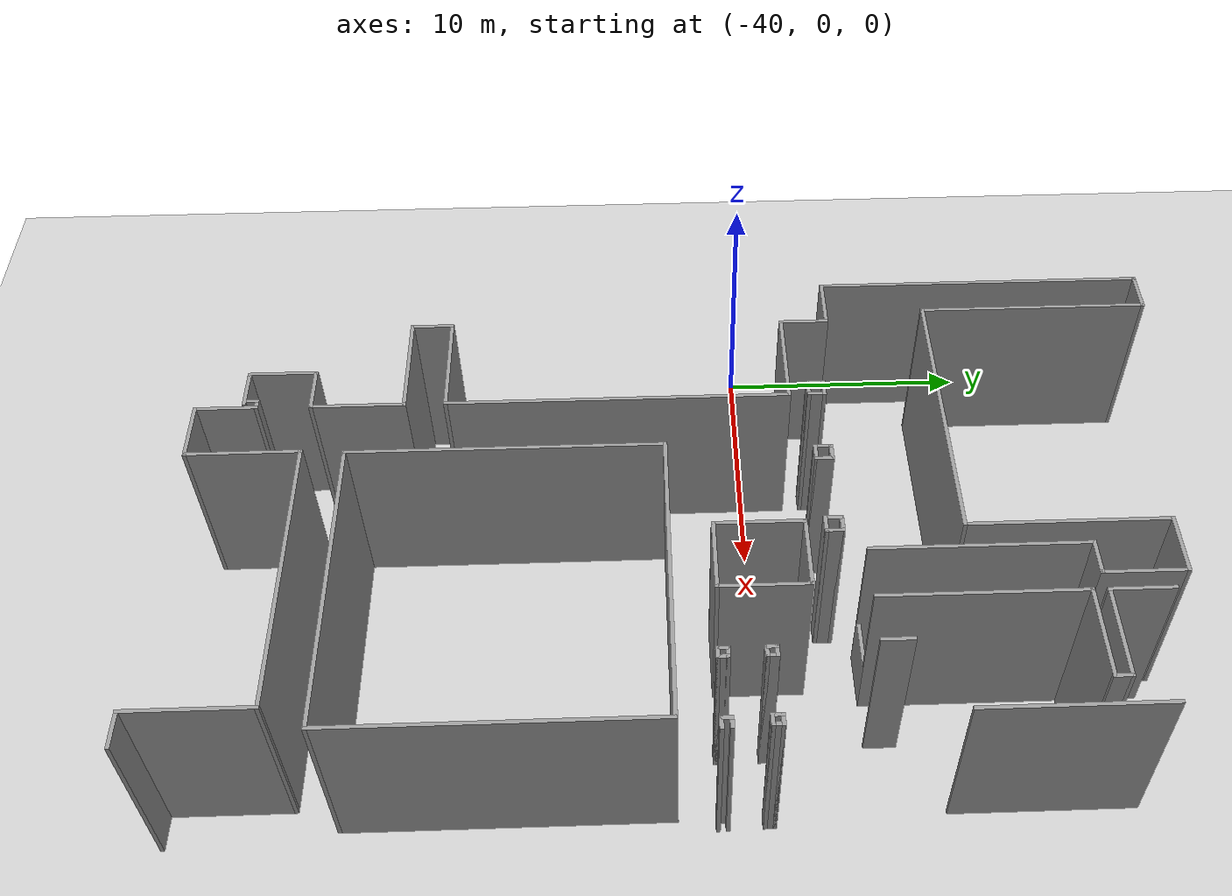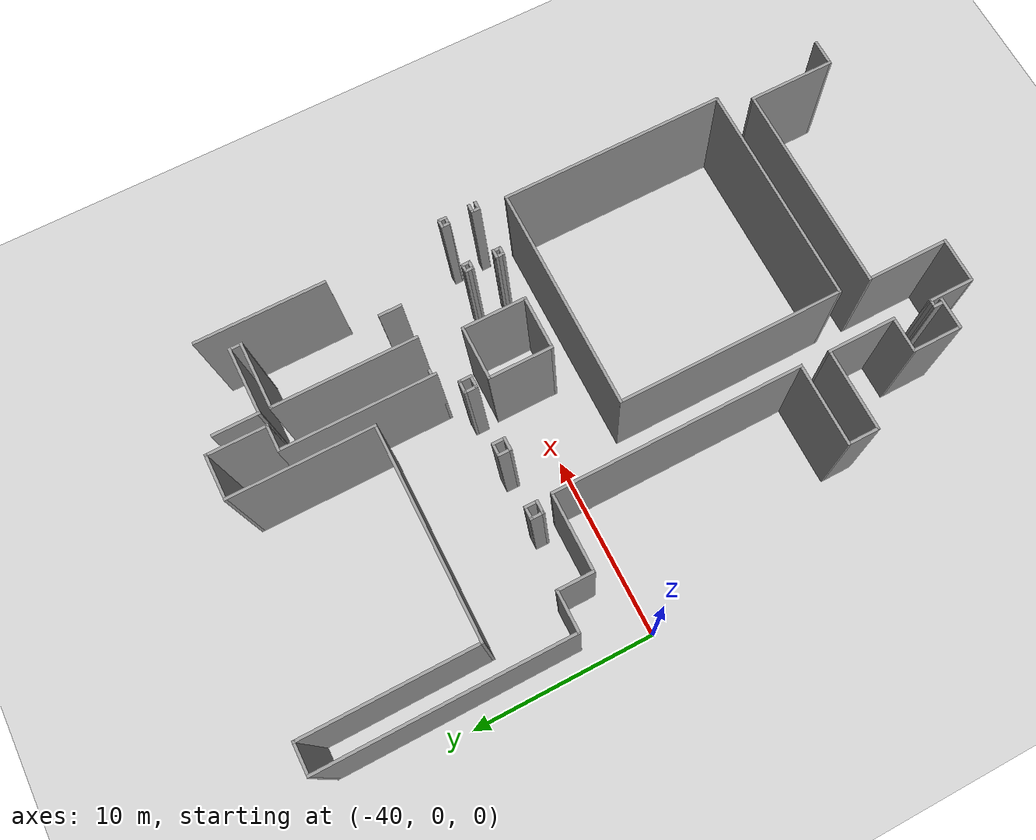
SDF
<sdf version="1.6">
 <world name="default">
  <model name="ground_plane">
   <static>1</static>
   <link name="link">
    <collision name="collision">
     <geometry><plane><normal>0 0 1</normal><size>100 100</size></plane></geometry>
     <surface>
      <contact><collide_bitmask>65535</collide_bitmask></contact>
      <friction><ode><mu>100</mu><mu2>50</mu2></ode></friction>
     </surface>
    </collision>
    <visual name="visual">
     <cast_shadows>0</cast_shadows>
     <geometry><plane><normal>0 0 1</normal><size>100 100</size></plane></geometry>
     <material>
      <script><uri>file://media/materials/scripts/gazebo.material</uri><name>Gazebo/Grey</name></script>
     </material>
    </visual>
   </link>
  </model>
  <model name="mmca">
   <pose>0.137385 4.31033 0 0 -0 0</pose>
   <link name="Wall_100">
    <collision name="Wall_100_Collision">
     <geometry><box><size>2.5 0.15 7</size></box></geometry>
     <pose>0 0 3.5 0 -0 0</pose>
    </collision>
    <visual name="Wall_100_Visual">
     <pose>0 0 3.5 0 -0 0</pose>
     <geometry><box><size>2.5 0.15 7</size></box></geometry>
     <material>
      <script><uri>file://media/materials/scripts/gazebo.material</uri><name>Gazebo/Grey</name></script>
      <ambient>1 1 1 1</ambient>
     </material>
     <meta><layer>0</layer></meta>
    </visual>
    <pose>-24.9515 10.8265 0 0 -0 3.14159</pose>
   </link>
   <link name="Wall_101">
    <collision name="Wall_101_Collision">
     <geometry><box><size>7.75 0.15 7</size></box></geometry>
     <pose>0 0 3.5 0 -0 0</pose>
    </collision>
    <visual name="Wall_101_Visual">
     <pose>0 0 3.5 0 -0 0</pose>
     <geometry><box><size>7.75 0.15 7</size></box></geometry>
     <material>
      <script><uri>file://media/materials/scripts/gazebo.material</uri><name>Gazebo/Grey</name></script>
      <ambient>1 1 1 1</ambient>
     </material>
     <meta><layer>0</layer></meta>
    </visual>
    <pose>-26.1265 7.0265 0 0 -0 -1.5708</pose>
   </link>
   <link name="Wall_102">
    <collision name="Wall_102_Collision">
     <geometry><box><size>11.5 0.15 7</size></box></geometry>
     <pose>0 0 3.5 0 -0 0</pose>
    </collision>
    <visual name="Wall_102_Visual">
     <pose>0 0 3.5 0 -0 0</pose>
     <geometry><box><size>11.5 0.15 7</size></box></geometry>
     <material>
      <script><uri>file://media/materials/scripts/gazebo.material</uri><name>Gazebo/Grey</name></script>
      <ambient>1 1 1 1</ambient>
     </material>
     <meta><layer>0</layer></meta>
    </visual>
    <pose>-31.8015 3.2265 0 0 -0 3.14159</pose>
   </link>
   <link name="Wall_103">
    <collision name="Wall_103_Collision">
     <geometry><box><size>9.25 0.15 7</size></box></geometry>
     <pose>0 0 3.5 0 -0 0</pose>
    </collision>
    <visual name="Wall_103_Visual">
     <pose>0 0 3.5 0 -0 0</pose>
     <geometry><box><size>9.25 0.15 7</size></box></geometry>
     <material>
      <script><uri>file://media/materials/scripts/gazebo.material</uri><name>Gazebo/Grey</name></script>
      <ambient>1 1 1 1</ambient>
     </material>
     <meta><layer>0</layer></meta>
    </visual>
    <pose>-37.4765 7.7765 0 0 -0 1.5708</pose>
   </link>
   <link name="Wall_104">
    <collision name="Wall_104_Collision">
     <geometry><box><size>1.75 0.15 7</size></box></geometry>
     <pose>0 0 3.5 0 -0 0</pose>
    </collision>
    <visual name="Wall_104_Visual">
     <pose>0 0 3.5 0 -0 0</pose>
     <geometry><box><size>1.75 0.15 7</size></box></geometry>
     <material>
      <script><uri>file://media/materials/scripts/gazebo.material</uri><name>Gazebo/Grey</name></script>
      <ambient>1 1 1 1</ambient>
     </material>
     <meta><layer>0</layer></meta>
    </visual>
    <pose>-38.2765 12.3265 0 0 -0 3.14159</pose>
   </link>
   <link name="Wall_105">
    <collision name="Wall_105_Collision">
     <geometry><box><size>13.25 0.15 7</size></box></geometry>
     <pose>0 0 3.5 0 -0 0</pose>
    </collision>
    <visual name="Wall_105_Visual">
     <pose>0 0 3.5 0 -0 0</pose>
     <geometry><box><size>13.25 0.15 7</size></box></geometry>
     <material>
      <script><uri>file://media/materials/scripts/gazebo.material</uri><name>Gazebo/Grey</name></script>
      <ambient>1 1 1 1</ambient>
     </material>
     <meta><layer>0</layer></meta>
    </visual>
    <pose>-39.0765 5.7765 0 0 -0 -1.5708</pose>
   </link>
   <link name="Wall_106">
    <collision name="Wall_106_Collision">
     <geometry><box><size>2.25 0.15 7</size></box></geometry>
     <pose>0 0 3.5 0 -0 0</pose>
    </collision>
    <visual name="Wall_106_Visual">
     <pose>0 0 3.5 0 -0 0</pose>
     <geometry><box><size>2.25 0.15 7</size></box></geometry>
     <material>
      <script><uri>file://media/materials/scripts/gazebo.material</uri><name>Gazebo/Grey</name></script>
      <ambient>1 1 1 1</ambient>
     </material>
     <meta><layer>0</layer></meta>
    </visual>
    <pose>-38.0265 -0.773501 0 0 -0 0</pose>
   </link>
   <link name="Wall_107">
    <collision name="Wall_107_Collision">
     <geometry><box><size>2 0.15 7</size></box></geometry>
     <pose>0 0 3.5 0 -0 0</pose>
    </collision>
    <visual name="Wall_107_Visual">
     <pose>0 0 3.5 0 -0 0</pose>
     <geometry><box><size>2 0.15 7</size></box></geometry>
     <material>
      <script><uri>file://media/materials/scripts/gazebo.material</uri><name>Gazebo/Grey</name></script>
      <ambient>1 1 1 1</ambient>
     </material>
     <meta><layer>0</layer></meta>
    </visual>
    <pose>-36.9765 -1.6985 0 0 -0 -1.5708</pose>
   </link>
   <link name="Wall_108">
    <collision name="Wall_108_Collision">
     <geometry><box><size>4.25 0.15 7</size></box></geometry>
     <pose>0 0 3.5 0 -0 0</pose>
    </collision>
    <visual name="Wall_108_Visual">
     <pose>0 0 3.5 0 -0 0</pose>
     <geometry><box><size>4.25 0.15 7</size></box></geometry>
     <material>
      <script><uri>file://media/materials/scripts/gazebo.material</uri><name>Gazebo/Grey</name></script>
      <ambient>1 1 1 1</ambient>
     </material>
     <meta><layer>0</layer></meta>
    </visual>
    <pose>-34.9265 -2.6235 0 0 -0 0</pose>
   </link>
   <link name="Wall_109">
    <collision name="Wall_109_Collision">
     <geometry><box><size>13.5 0.15 7</size></box></geometry>
     <pose>0 0 3.5 0 -0 0</pose>
    </collision>
    <visual name="Wall_109_Visual">
     <pose>0 0 3.5 0 -0 0</pose>
     <geometry><box><size>13.5 0.15 7</size></box></geometry>
     <material>
      <script><uri>file://media/materials/scripts/gazebo.material</uri><name>Gazebo/Grey</name></script>
      <ambient>1 1 1 1</ambient>
     </material>
     <meta><layer>0</layer></meta>
    </visual>
    <pose>-32.8765 -9.2985 0 0 -0 -1.5708</pose>
   </link>
   <link name="Wall_110">
    <collision name="Wall_110_Collision">
     <geometry><box><size>4.5 0.15 7</size></box></geometry>
     <pose>0 0 3.5 0 -0 0</pose>
    </collision>
    <visual name="Wall_110_Visual">
     <pose>0 0 3.5 0 -0 0</pose>
     <geometry><box><size>4.5 0.15 7</size></box></geometry>
     <material>
      <script><uri>file://media/materials/scripts/gazebo.material</uri><name>Gazebo/Grey</name></script>
      <ambient>1 1 1 1</ambient>
     </material>
     <meta><layer>0</layer></meta>
    </visual>
    <pose>-35.0515 -15.9735 0 0 -0 3.14159</pose>
   </link>
   <link name="Wall_111">
    <collision name="Wall_111_Collision">
     <geometry><box><size>1.75 0.15 7</size></box></geometry>
     <pose>0 0 3.5 0 -0 0</pose>
    </collision>
    <visual name="Wall_111_Visual">
     <pose>0 0 3.5 0 -0 0</pose>
     <geometry><box><size>1.75 0.15 7</size></box></geometry>
     <material>
      <script><uri>file://media/materials/scripts/gazebo.material</uri><name>Gazebo/Grey</name></script>
      <ambient>1 1 1 1</ambient>
     </material>
     <meta><layer>0</layer></meta>
    </visual>
    <pose>-37.2265 -16.7735 0 0 -0 -1.5708</pose>
   </link>
   <link name="Wall_112">
    <collision name="Wall_112_Collision">
     <geometry><box><size>4.5 0.15 7</size></box></geometry>
     <pose>0 0 3.5 0 -0 0</pose>
    </collision>
    <visual name="Wall_112_Visual">
     <pose>0 0 3.5 0 -0 0</pose>
     <geometry><box><size>4.5 0.15 7</size></box></geometry>
     <material>
      <script><uri>file://media/materials/scripts/gazebo.material</uri><name>Gazebo/Grey</name></script>
      <ambient>1 1 1 1</ambient>
     </material>
     <meta><layer>0</layer></meta>
    </visual>
    <pose>-35.0515 -17.5735 0 0 -0 0</pose>
   </link>
   <link name="Wall_113">
    <collision name="Wall_113_Collision">
     <geometry><box><size>3.75 0.15 7</size></box></geometry>
     <pose>0 0 3.5 0 -0 0</pose>
    </collision>
    <visual name="Wall_113_Visual">
     <pose>0 0 3.5 0 -0 0</pose>
     <geometry><box><size>3.75 0.15 7</size></box></geometry>
     <material>
      <script><uri>file://media/materials/scripts/gazebo.material</uri><name>Gazebo/Grey</name></script>
      <ambient>1 1 1 1</ambient>
     </material>
     <meta><layer>0</layer></meta>
    </visual>
    <pose>-32.8765 -19.3735 0 0 -0 -1.5708</pose>
   </link>
   <link name="Wall_114">
    <collision name="Wall_114_Collision">
     <geometry><box><size>2 0.15 7</size></box></geometry>
     <pose>0 0 3.5 0 -0 0</pose>
    </collision>
    <visual name="Wall_114_Visual">
     <pose>0 0 3.5 0 -0 0</pose>
     <geometry><box><size>2 0.15 7</size></box></geometry>
     <material>
      <script><uri>file://media/materials/scripts/gazebo.material</uri><name>Gazebo/Grey</name></script>
      <ambient>1 1 1 1</ambient>
     </material>
     <meta><layer>0</layer></meta>
    </visual>
    <pose>-33.8015 -21.1735 0 0 -0 3.14159</pose>
   </link>
   <link name="Wall_116">
    <collision name="Wall_116_Collision">
     <geometry><box><size>2.75 0.15 7</size></box></geometry>
     <pose>0 0 3.5 0 -0 0</pose>
    </collision>
    <visual name="Wall_116_Visual">
     <pose>0 0 3.5 0 -0 0</pose>
     <geometry><box><size>2.75 0.15 7</size></box></geometry>
     <material>
      <script><uri>file://media/materials/scripts/gazebo.material</uri><name>Gazebo/Grey</name></script>
      <ambient>1 1 1 1</ambient>
     </material>
     <meta><layer>0</layer></meta>
    </visual>
    <pose>-34.7265 -22.4735 0 0 -0 -1.5708</pose>
   </link>
   <link name="Wall_117">
    <collision name="Wall_117_Collision">
     <geometry><box><size>1.75 0.15 7</size></box></geometry>
     <pose>0 0 3.5 0 -0 0</pose>
    </collision>
    <visual name="Wall_117_Visual">
     <pose>0 0 3.5 0 -0 0</pose>
     <geometry><box><size>1.75 0.15 7</size></box></geometry>
     <material>
      <script><uri>file://media/materials/scripts/gazebo.material</uri><name>Gazebo/Grey</name></script>
      <ambient>1 1 1 1</ambient>
     </material>
     <meta><layer>0</layer></meta>
    </visual>
    <pose>-33.9265 -23.7735 0 0 -0 0</pose>
   </link>
   <link name="Wall_20">
    <collision name="Wall_20_Collision">
     <geometry><box><size>3 0.15 7</size></box></geometry>
     <pose>0 0 3.5 0 -0 0</pose>
    </collision>
    <visual name="Wall_20_Visual">
     <pose>0 0 3.5 0 -0 0</pose>
     <geometry><box><size>3 0.15 7</size></box></geometry>
     <material>
      <script><uri>file://media/materials/scripts/gazebo.material</uri><name>Gazebo/Grey</name></script>
      <ambient>1 1 1 1</ambient>
     </material>
     <meta><layer>0</layer></meta>
    </visual>
    <pose>-25.0695 -2.5415 0 0 -0 0</pose>
   </link>
   <link name="Wall_21">
    <collision name="Wall_21_Collision">
     <geometry><box><size>3.5 0.15 7</size></box></geometry>
     <pose>0 0 3.5 0 -0 0</pose>
    </collision>
    <visual name="Wall_21_Visual">
     <pose>0 0 3.5 0 -0 0</pose>
     <geometry><box><size>3.5 0.15 7</size></box></geometry>
     <material>
      <script><uri>file://media/materials/scripts/gazebo.material</uri><name>Gazebo/Grey</name></script>
      <ambient>1 1 1 1</ambient>
     </material>
     <meta><layer>0</layer></meta>
    </visual>
    <pose>-23.6445 -4.2165 0 0 -0 -1.5708</pose>
   </link>
   <link name="Wall_22">
    <collision name="Wall_22_Collision">
     <geometry><box><size>3 0.15 7</size></box></geometry>
     <pose>0 0 3.5 0 -0 0</pose>
    </collision>
    <visual name="Wall_22_Visual">
     <pose>0 0 3.5 0 -0 0</pose>
     <geometry><box><size>3 0.15 7</size></box></geometry>
     <material>
      <script><uri>file://media/materials/scripts/gazebo.material</uri><name>Gazebo/Grey</name></script>
      <ambient>1 1 1 1</ambient>
     </material>
     <meta><layer>0</layer></meta>
    </visual>
    <pose>-25.0695 -5.8915 0 0 -0 3.14159</pose>
   </link>
   <link name="Wall_23">
    <collision name="Wall_23_Collision">
     <geometry><box><size>3.5 0.15 7</size></box></geometry>
     <pose>0 0 3.5 0 -0 0</pose>
    </collision>
    <visual name="Wall_23_Visual">
     <pose>0 0 3.5 0 -0 0</pose>
     <geometry><box><size>3.5 0.15 7</size></box></geometry>
     <material>
      <script><uri>file://media/materials/scripts/gazebo.material</uri><name>Gazebo/Grey</name></script>
      <ambient>1 1 1 1</ambient>
     </material>
     <meta><layer>0</layer></meta>
    </visual>
    <pose>-26.4945 -4.2165 0 0 -0 1.5708</pose>
   </link>
   <link name="Wall_254">
    <collision name="Wall_254_Collision">
     <geometry><box><size>1.25 0.15 7</size></box></geometry>
     <pose>0 0 3.5 0 -0 0</pose>
    </collision>
    <visual name="Wall_254_Visual">
     <pose>0 0 3.5 0 -0 0</pose>
     <geometry><box><size>1.25 0.15 7</size></box></geometry>
     <material>
      <script><uri>file://media/materials/scripts/gazebo.material</uri><name>Gazebo/Grey</name></script>
      <ambient>1 1 1 1</ambient>
     </material>
     <meta><layer>0</layer></meta>
    </visual>
    <pose>-21.1765 0.176499 0 0 -0 1.5708</pose>
   </link>
   <link name="Wall_258">
    <collision name="Wall_258_Collision">
     <geometry><box><size>2.25 0.15 2.5</size></box></geometry>
     <pose>0 0 1.25 0 -0 0</pose>
    </collision>
    <visual name="Wall_258_Visual">
     <pose>0 0 1.25 0 -0 0</pose>
     <geometry><box><size>2.25 0.15 2.5</size></box></geometry>
     <material>
      <script><uri>file://media/materials/scripts/gazebo.material</uri><name>Gazebo/Grey</name></script>
      <ambient>1 1 1 1</ambient>
     </material>
     <meta><layer>0</layer></meta>
    </visual>
    <pose>-24.0765 -0.373501 0 0 -0 0</pose>
   </link>
   <link name="Wall_259">
    <collision name="Wall_259_Collision">
     <geometry><box><size>7.75 0.15 7</size></box></geometry>
     <pose>0 0 3.5 0 -0 0</pose>
    </collision>
    <visual name="Wall_259_Visual">
     <pose>0 0 3.5 0 -0 0</pose>
     <geometry><box><size>7.75 0.15 7</size></box></geometry>
     <material>
      <script><uri>file://media/materials/scripts/gazebo.material</uri><name>Gazebo/Grey</name></script>
      <ambient>1 1 1 1</ambient>
     </material>
     <meta><layer>0</layer></meta>
    </visual>
    <pose>-23.0265 3.4265 0 0 -0 1.5708</pose>
   </link>
   <link name="Wall_260">
    <collision name="Wall_260_Collision">
     <geometry><box><size>3.75 0.15 7</size></box></geometry>
     <pose>0 0 3.5 0 -0 0</pose>
    </collision>
    <visual name="Wall_260_Visual">
     <pose>0 0 3.5 0 -0 0</pose>
     <geometry><box><size>3.75 0.15 7</size></box></geometry>
     <material>
      <script><uri>file://media/materials/scripts/gazebo.material</uri><name>Gazebo/Grey</name></script>
      <ambient>1 1 1 1</ambient>
     </material>
     <meta><layer>0</layer></meta>
    </visual>
    <pose>-21.2265 7.2265 0 0 -0 0</pose>
   </link>
   <link name="Wall_263">
    <collision name="Wall_263_Collision">
     <geometry><box><size>0.75 0.15 7</size></box></geometry>
     <pose>0 0 3.5 0 -0 0</pose>
    </collision>
    <visual name="Wall_263_Visual">
     <pose>0 0 3.5 0 -0 0</pose>
     <geometry><box><size>0.75 0.15 7</size></box></geometry>
     <material>
      <script><uri>file://media/materials/scripts/gazebo.material</uri><name>Gazebo/Grey</name></script>
      <ambient>1 1 1 1</ambient>
     </material>
     <meta><layer>0</layer></meta>
    </visual>
    <pose>-19.4265 7.5265 0 0 -0 1.5708</pose>
   </link>
   <link name="Wall_264">
    <collision name="Wall_264_Collision">
     <geometry><box><size>3.75 0.15 7</size></box></geometry>
     <pose>0 0 3.5 0 -0 0</pose>
    </collision>
    <visual name="Wall_264_Visual">
     <pose>0 0 3.5 0 -0 0</pose>
     <geometry><box><size>3.75 0.15 7</size></box></geometry>
     <material>
      <script><uri>file://media/materials/scripts/gazebo.material</uri><name>Gazebo/Grey</name></script>
      <ambient>1 1 1 1</ambient>
     </material>
     <meta><layer>0</layer></meta>
    </visual>
    <pose>-21.2265 7.8265 0 0 -0 3.14159</pose>
   </link>
   <link name="Wall_266">
    <collision name="Wall_266_Collision">
     <geometry><box><size>2.5 0.15 7</size></box></geometry>
     <pose>0 0 3.5 0 -0 0</pose>
    </collision>
    <visual name="Wall_266_Visual">
     <pose>0 0 3.5 0 -0 0</pose>
     <geometry><box><size>2.5 0.15 7</size></box></geometry>
     <material>
      <script><uri>file://media/materials/scripts/gazebo.material</uri><name>Gazebo/Grey</name></script>
      <ambient>1 1 1 1</ambient>
     </material>
     <meta><layer>0</layer></meta>
    </visual>
    <pose>-23.0265 9.0015 0 0 -0 1.5708</pose>
   </link>
   <link name="Wall_270">
    <collision name="Wall_270_Collision">
     <geometry><box><size>7 0.15 7</size></box></geometry>
     <pose>0 0 3.5 0 -0 0</pose>
    </collision>
    <visual name="Wall_270_Visual">
     <pose>0 0 3.5 0 -0 0</pose>
     <geometry><box><size>7 0.15 7</size></box></geometry>
     <material>
      <script><uri>file://media/materials/scripts/gazebo.material</uri><name>Gazebo/Grey</name></script>
      <ambient>1 1 1 1</ambient>
     </material>
     <meta><layer>0</layer></meta>
    </visual>
    <pose>-18.3315 5.7965 0 0 -0 -1.5708</pose>
   </link>
   <link name="Wall_324">
    <collision name="Wall_324_Collision">
     <geometry><box><size>0.5 0.15 7</size></box></geometry>
     <pose>0 0 3.5 0 -0 0</pose>
    </collision>
    <visual name="Wall_324_Visual">
     <pose>0 0 3.5 0 -0 0</pose>
     <geometry><box><size>0.5 0.15 7</size></box></geometry>
     <material>
      <script><uri>file://media/materials/scripts/gazebo.material</uri><name>Gazebo/Grey</name></script>
      <ambient>1 1 1 1</ambient>
     </material>
     <meta><layer>0</layer></meta>
    </visual>
    <pose>-20.8435 -3.9825 0 0 -0 0</pose>
   </link>
   <link name="Wall_325">
    <collision name="Wall_325_Collision">
     <geometry><box><size>0.5 0.15 7</size></box></geometry>
     <pose>0 0 3.5 0 -0 0</pose>
    </collision>
    <visual name="Wall_325_Visual">
     <pose>0 0 3.5 0 -0 0</pose>
     <geometry><box><size>0.5 0.15 7</size></box></geometry>
     <material>
      <script><uri>file://media/materials/scripts/gazebo.material</uri><name>Gazebo/Grey</name></script>
      <ambient>1 1 1 1</ambient>
     </material>
     <meta><layer>0</layer></meta>
    </visual>
    <pose>-20.6685 -4.1575 0 0 -0 -1.5708</pose>
   </link>
   <link name="Wall_326">
    <collision name="Wall_326_Collision">
     <geometry><box><size>0.5 0.15 7</size></box></geometry>
     <pose>0 0 3.5 0 -0 0</pose>
    </collision>
    <visual name="Wall_326_Visual">
     <pose>0 0 3.5 0 -0 0</pose>
     <geometry><box><size>0.5 0.15 7</size></box></geometry>
     <material>
      <script><uri>file://media/materials/scripts/gazebo.material</uri><name>Gazebo/Grey</name></script>
      <ambient>1 1 1 1</ambient>
     </material>
     <meta><layer>0</layer></meta>
    </visual>
    <pose>-20.8435 -4.3325 0 0 -0 3.14159</pose>
   </link>
   <link name="Wall_327">
    <collision name="Wall_327_Collision">
     <geometry><box><size>0.5 0.15 7</size></box></geometry>
     <pose>0 0 3.5 0 -0 0</pose>
    </collision>
    <visual name="Wall_327_Visual">
     <pose>0 0 3.5 0 -0 0</pose>
     <geometry><box><size>0.5 0.15 7</size></box></geometry>
     <material>
      <script><uri>file://media/materials/scripts/gazebo.material</uri><name>Gazebo/Grey</name></script>
      <ambient>1 1 1 1</ambient>
     </material>
     <meta><layer>0</layer></meta>
    </visual>
    <pose>-21.0185 -4.1575 0 0 -0 1.5708</pose>
   </link>
   <link name="Wall_329">
    <collision name="Wall_329_Collision">
     <geometry><box><size>0.5 0.15 7</size></box></geometry>
     <pose>0 0 3.5 0 -0 0</pose>
    </collision>
    <visual name="Wall_329_Visual">
     <pose>0 0 3.5 0 -0 0</pose>
     <geometry><box><size>0.5 0.15 7</size></box></geometry>
     <material>
      <script><uri>file://media/materials/scripts/gazebo.material</uri><name>Gazebo/Grey</name></script>
      <ambient>1 1 1 1</ambient>
     </material>
     <meta><layer>0</layer></meta>
    </visual>
    <pose>-20.8535 -5.6555 0 0 -0 0</pose>
   </link>
   <link name="Wall_330">
    <collision name="Wall_330_Collision">
     <geometry><box><size>0.5 0.15 7</size></box></geometry>
     <pose>0 0 3.5 0 -0 0</pose>
    </collision>
    <visual name="Wall_330_Visual">
     <pose>0 0 3.5 0 -0 0</pose>
     <geometry><box><size>0.5 0.15 7</size></box></geometry>
     <material>
      <script><uri>file://media/materials/scripts/gazebo.material</uri><name>Gazebo/Grey</name></script>
      <ambient>1 1 1 1</ambient>
     </material>
     <meta><layer>0</layer></meta>
    </visual>
    <pose>-20.6785 -5.8305 0 0 -0 -1.5708</pose>
   </link>
   <link name="Wall_331">
    <collision name="Wall_331_Collision">
     <geometry><box><size>0.5 0.15 7</size></box></geometry>
     <pose>0 0 3.5 0 -0 0</pose>
    </collision>
    <visual name="Wall_331_Visual">
     <pose>0 0 3.5 0 -0 0</pose>
     <geometry><box><size>0.5 0.15 7</size></box></geometry>
     <material>
      <script><uri>file://media/materials/scripts/gazebo.material</uri><name>Gazebo/Grey</name></script>
      <ambient>1 1 1 1</ambient>
     </material>
     <meta><layer>0</layer></meta>
    </visual>
    <pose>-20.8535 -6.0055 0 0 -0 3.14159</pose>
   </link>
   <link name="Wall_332">
    <collision name="Wall_332_Collision">
     <geometry><box><size>0.5 0.15 7</size></box></geometry>
     <pose>0 0 3.5 0 -0 0</pose>
    </collision>
    <visual name="Wall_332_Visual">
     <pose>0 0 3.5 0 -0 0</pose>
     <geometry><box><size>0.5 0.15 7</size></box></geometry>
     <material>
      <script><uri>file://media/materials/scripts/gazebo.material</uri><name>Gazebo/Grey</name></script>
      <ambient>1 1 1 1</ambient>
     </material>
     <meta><layer>0</layer></meta>
    </visual>
    <pose>-21.0285 -5.8305 0 0 -0 1.5708</pose>
   </link>
   <link name="Wall_334">
    <collision name="Wall_334_Collision">
     <geometry><box><size>0.5 0.15 7</size></box></geometry>
     <pose>0 0 3.5 0 -0 0</pose>
    </collision>
    <visual name="Wall_334_Visual">
     <pose>0 0 3.5 0 -0 0</pose>
     <geometry><box><size>0.5 0.15 7</size></box></geometry>
     <material>
      <script><uri>file://media/materials/scripts/gazebo.material</uri><name>Gazebo/Grey</name></script>
      <ambient>1 1 1 1</ambient>
     </material>
     <meta><layer>0</layer></meta>
    </visual>
    <pose>-18.0815 -5.6745 0 0 -0 0</pose>
   </link>
   <link name="Wall_336">
    <collision name="Wall_336_Collision">
     <geometry><box><size>0.5 0.15 7</size></box></geometry>
     <pose>0 0 3.5 0 -0 0</pose>
    </collision>
    <visual name="Wall_336_Visual">
     <pose>0 0 3.5 0 -0 0</pose>
     <geometry><box><size>0.5 0.15 7</size></box></geometry>
     <material>
      <script><uri>file://media/materials/scripts/gazebo.material</uri><name>Gazebo/Grey</name></script>
      <ambient>1 1 1 1</ambient>
     </material>
     <meta><layer>0</layer></meta>
    </visual>
    <pose>-18.0815 -6.0245 0 0 -0 3.14159</pose>
   </link>
   <link name="Wall_337">
    <collision name="Wall_337_Collision">
     <geometry><box><size>0.5 0.15 7</size></box></geometry>
     <pose>0 0 3.5 0 -0 0</pose>
    </collision>
    <visual name="Wall_337_Visual">
     <pose>0 0 3.5 0 -0 0</pose>
     <geometry><box><size>0.5 0.15 7</size></box></geometry>
     <material>
      <script><uri>file://media/materials/scripts/gazebo.material</uri><name>Gazebo/Grey</name></script>
      <ambient>1 1 1 1</ambient>
     </material>
     <meta><layer>0</layer></meta>
    </visual>
    <pose>-18.2565 -5.8495 0 0 -0 1.5708</pose>
   </link>
   <link name="Wall_364">
    <collision name="Wall_364_Collision">
     <geometry><box><size>12.25 0.15 7</size></box></geometry>
     <pose>0 0 3.5 0 -0 0</pose>
    </collision>
    <visual name="Wall_364_Visual">
     <pose>0 0 3.5 0 -0 0</pose>
     <geometry><box><size>12.25 0.15 7</size></box></geometry>
     <material>
      <script><uri>file://media/materials/scripts/gazebo.material</uri><name>Gazebo/Grey</name></script>
      <ambient>1 1 1 1</ambient>
     </material>
     <meta><layer>0</layer></meta>
    </visual>
    <pose>-24.3975 -7.5215 0 0 -0 0</pose>
   </link>
   <link name="Wall_365">
    <collision name="Wall_365_Collision">
     <geometry><box><size>12.25 0.15 7</size></box></geometry>
     <pose>0 0 3.5 0 -0 0</pose>
    </collision>
    <visual name="Wall_365_Visual">
     <pose>0 0 3.5 0 -0 0</pose>
     <geometry><box><size>12.25 0.15 7</size></box></geometry>
     <material>
      <script><uri>file://media/materials/scripts/gazebo.material</uri><name>Gazebo/Grey</name></script>
      <ambient>1 1 1 1</ambient>
     </material>
     <meta><layer>0</layer></meta>
    </visual>
    <pose>-18.3475 -13.5715 0 0 -0 -1.5708</pose>
   </link>
   <link name="Wall_366">
    <collision name="Wall_366_Collision">
     <geometry><box><size>12.25 0.15 7</size></box></geometry>
     <pose>0 0 3.5 0 -0 0</pose>
    </collision>
    <visual name="Wall_366_Visual">
     <pose>0 0 3.5 0 -0 0</pose>
     <geometry><box><size>12.25 0.15 7</size></box></geometry>
     <material>
      <script><uri>file://media/materials/scripts/gazebo.material</uri><name>Gazebo/Grey</name></script>
      <ambient>1 1 1 1</ambient>
     </material>
     <meta><layer>0</layer></meta>
    </visual>
    <pose>-24.3975 -19.6215 0 0 -0 3.14159</pose>
   </link>
   <link name="Wall_367">
    <collision name="Wall_367_Collision">
     <geometry><box><size>12.25 0.15 7</size></box></geometry>
     <pose>0 0 3.5 0 -0 0</pose>
    </collision>
    <visual name="Wall_367_Visual">
     <pose>0 0 3.5 0 -0 0</pose>
     <geometry><box><size>12.25 0.15 7</size></box></geometry>
     <material>
      <script><uri>file://media/materials/scripts/gazebo.material</uri><name>Gazebo/Grey</name></script>
      <ambient>1 1 1 1</ambient>
     </material>
     <meta><layer>0</layer></meta>
    </visual>
    <pose>-30.4475 -13.5715 0 0 -0 1.5708</pose>
   </link>
   <link name="Wall_369">
    <collision name="Wall_369_Collision">
     <geometry><box><size>0.5 0.15 7</size></box></geometry>
     <pose>0 0 3.5 0 -0 0</pose>
    </collision>
    <visual name="Wall_369_Visual">
     <pose>0 0 3.5 0 -0 0</pose>
     <geometry><box><size>0.5 0.15 7</size></box></geometry>
     <material>
      <script><uri>file://media/materials/scripts/gazebo.material</uri><name>Gazebo/Grey</name></script>
      <ambient>1 1 1 1</ambient>
     </material>
     <meta><layer>0</layer></meta>
    </visual>
    <pose>-18.1345 -3.9895 0 0 -0 0</pose>
   </link>
   <link name="Wall_370">
    <collision name="Wall_370_Collision">
     <geometry><box><size>0.5 0.15 7</size></box></geometry>
     <pose>0 0 3.5 0 -0 0</pose>
    </collision>
    <visual name="Wall_370_Visual">
     <pose>0 0 3.5 0 -0 0</pose>
     <geometry><box><size>0.5 0.15 7</size></box></geometry>
     <material>
      <script><uri>file://media/materials/scripts/gazebo.material</uri><name>Gazebo/Grey</name></script>
      <ambient>1 1 1 1</ambient>
     </material>
     <meta><layer>0</layer></meta>
    </visual>
    <pose>-17.9595 -4.1645 0 0 -0 -1.5708</pose>
   </link>
   <link name="Wall_371">
    <collision name="Wall_371_Collision">
     <geometry><box><size>0.5 0.15 7</size></box></geometry>
     <pose>0 0 3.5 0 -0 0</pose>
    </collision>
    <visual name="Wall_371_Visual">
     <pose>0 0 3.5 0 -0 0</pose>
     <geometry><box><size>0.5 0.15 7</size></box></geometry>
     <material>
      <script><uri>file://media/materials/scripts/gazebo.material</uri><name>Gazebo/Grey</name></script>
      <ambient>1 1 1 1</ambient>
     </material>
     <meta><layer>0</layer></meta>
    </visual>
    <pose>-18.1345 -4.3395 0 0 -0 3.14159</pose>
   </link>
   <link name="Wall_372">
    <collision name="Wall_372_Collision">
     <geometry><box><size>0.5 0.15 7</size></box></geometry>
     <pose>0 0 3.5 0 -0 0</pose>
    </collision>
    <visual name="Wall_372_Visual">
     <pose>0 0 3.5 0 -0 0</pose>
     <geometry><box><size>0.5 0.15 7</size></box></geometry>
     <material>
      <script><uri>file://media/materials/scripts/gazebo.material</uri><name>Gazebo/Grey</name></script>
      <ambient>1 1 1 1</ambient>
     </material>
     <meta><layer>0</layer></meta>
    </visual>
    <pose>-18.3095 -4.1645 0 0 -0 1.5708</pose>
   </link>
   <link name="Wall_57">
    <collision name="Wall_57_Collision">
     <geometry><box><size>1.5 0.15 7</size></box></geometry>
     <pose>0 0 3.5 0 -0 0</pose>
    </collision>
    <visual name="Wall_57_Visual">
     <pose>0 0 3.5 0 -0 0</pose>
     <geometry><box><size>1.5 0.15 7</size></box></geometry>
     <material>
      <script><uri>file://media/materials/scripts/gazebo.material</uri><name>Gazebo/Grey</name></script>
      <ambient>1 1 1 1</ambient>
     </material>
     <meta><layer>0</layer></meta>
    </visual>
    <pose>-18.5335 -25.8765 0 0 -0 3.14159</pose>
   </link>
   <link name="Wall_58">
    <collision name="Wall_58_Collision">
     <geometry><box><size>4.75 0.15 7</size></box></geometry>
     <pose>0 0 3.5 0 -0 0</pose>
    </collision>
    <visual name="Wall_58_Visual">
     <pose>0 0 3.5 0 -0 0</pose>
     <geometry><box><size>4.75 0.15 7</size></box></geometry>
     <material>
      <script><uri>file://media/materials/scripts/gazebo.material</uri><name>Gazebo/Grey</name></script>
      <ambient>1 1 1 1</ambient>
     </material>
     <meta><layer>0</layer></meta>
    </visual>
    <pose>-19.2085 -23.5765 0 0 -0 1.5708</pose>
   </link>
   <link name="Wall_59">
    <collision name="Wall_59_Collision">
     <geometry><box><size>11.5 0.15 7</size></box></geometry>
     <pose>0 0 3.5 0 -0 0</pose>
    </collision>
    <visual name="Wall_59_Visual">
     <pose>0 0 3.5 0 -0 0</pose>
     <geometry><box><size>11.5 0.15 7</size></box></geometry>
     <material>
      <script><uri>file://media/materials/scripts/gazebo.material</uri><name>Gazebo/Grey</name></script>
      <ambient>1 1 1 1</ambient>
     </material>
     <meta><layer>0</layer></meta>
    </visual>
    <pose>-24.8835 -21.2765 0 0 -0 3.14159</pose>
   </link>
   <link name="Wall_62">
    <collision name="Wall_62_Collision">
     <geometry><box><size>4.5 0.15 7</size></box></geometry>
     <pose>0 0 3.5 0 -0 0</pose>
    </collision>
    <visual name="Wall_62_Visual">
     <pose>0 0 3.5 0 -0 0</pose>
     <geometry><box><size>4.5 0.15 7</size></box></geometry>
     <material>
      <script><uri>file://media/materials/scripts/gazebo.material</uri><name>Gazebo/Grey</name></script>
      <ambient>1 1 1 1</ambient>
     </material>
     <meta><layer>0</layer></meta>
    </visual>
    <pose>-30.5585 -23.4515 0 0 -0 -1.5708</pose>
   </link>
   <link name="Wall_63">
    <collision name="Wall_63_Collision">
     <geometry><box><size>2.5 0.15 7</size></box></geometry>
     <pose>0 0 3.5 0 -0 0</pose>
    </collision>
    <visual name="Wall_63_Visual">
     <pose>0 0 3.5 0 -0 0</pose>
     <geometry><box><size>2.5 0.15 7</size></box></geometry>
     <material>
      <script><uri>file://media/materials/scripts/gazebo.material</uri><name>Gazebo/Grey</name></script>
      <ambient>1 1 1 1</ambient>
     </material>
     <meta><layer>0</layer></meta>
    </visual>
    <pose>-31.7335 -25.6265 0 0 -0 3.14159</pose>
   </link>
   <link name="Wall_64">
    <collision name="Wall_64_Collision">
     <geometry><box><size>2.5 0.15 7</size></box></geometry>
     <pose>0 0 3.5 0 -0 0</pose>
    </collision>
    <visual name="Wall_64_Visual">
     <pose>0 0 3.5 0 -0 0</pose>
     <geometry><box><size>2.5 0.15 7</size></box></geometry>
     <material>
      <script><uri>file://media/materials/scripts/gazebo.material</uri><name>Gazebo/Grey</name></script>
      <ambient>1 1 1 1</ambient>
     </material>
     <meta><layer>0</layer></meta>
    </visual>
    <pose>-32.9085 -24.4515 0 0 -0 1.5708</pose>
   </link>
   <link name="Wall_65">
    <collision name="Wall_65_Collision">
     <geometry><box><size>0.5 0.15 7</size></box></geometry>
     <pose>0 0 3.5 0 -0 0</pose>
    </collision>
    <visual name="Wall_65_Visual">
     <pose>0 0 3.5 0 -0 0</pose>
     <geometry><box><size>0.5 0.15 7</size></box></geometry>
     <material>
      <script><uri>file://media/materials/scripts/gazebo.material</uri><name>Gazebo/Grey</name></script>
      <ambient>1 1 1 1</ambient>
     </material>
     <meta><layer>0</layer></meta>
    </visual>
    <pose>-33.0835 -23.2765 0 0 -0 3.14159</pose>
   </link>
   <link name="Wall_66">
    <collision name="Wall_66_Collision">
     <geometry><box><size>0.5 0.15 7</size></box></geometry>
     <pose>0 0 3.5 0 -0 0</pose>
    </collision>
    <visual name="Wall_66_Visual">
     <pose>0 0 3.5 0 -0 0</pose>
     <geometry><box><size>0.5 0.15 7</size></box></geometry>
     <material>
      <script><uri>file://media/materials/scripts/gazebo.material</uri><name>Gazebo/Grey</name></script>
      <ambient>1 1 1 1</ambient>
     </material>
     <meta><layer>0</layer></meta>
    </visual>
    <pose>-33.2585 -23.4515 0 0 -0 -1.5708</pose>
   </link>
   <link name="Wall_77">
    <collision name="Wall_77_Collision">
     <geometry><box><size>0.75 0.15 7</size></box></geometry>
     <pose>0 0 3.5 0 -0 0</pose>
    </collision>
    <visual name="Wall_77_Visual">
     <pose>0 0 3.5 0 -0 0</pose>
     <geometry><box><size>0.75 0.15 7</size></box></geometry>
     <material>
      <script><uri>file://media/materials/scripts/gazebo.material</uri><name>Gazebo/Grey</name></script>
      <ambient>1 1 1 1</ambient>
     </material>
     <meta><layer>0</layer></meta>
    </visual>
    <pose>-26.6115 -1.5095 0 0 -0 -1.5708</pose>
   </link>
   <link name="Wall_78">
    <collision name="Wall_78_Collision">
     <geometry><box><size>0.75 0.15 7</size></box></geometry>
     <pose>0 0 3.5 0 -0 0</pose>
    </collision>
    <visual name="Wall_78_Visual">
     <pose>0 0 3.5 0 -0 0</pose>
     <geometry><box><size>0.75 0.15 7</size></box></geometry>
     <material>
      <script><uri>file://media/materials/scripts/gazebo.material</uri><name>Gazebo/Grey</name></script>
      <ambient>1 1 1 1</ambient>
     </material>
     <meta><layer>0</layer></meta>
    </visual>
    <pose>-26.3115 -1.8095 0 0 -0 0</pose>
   </link>
   <link name="Wall_79">
    <collision name="Wall_79_Collision">
     <geometry><box><size>0.75 0.15 7</size></box></geometry>
     <pose>0 0 3.5 0 -0 0</pose>
    </collision>
    <visual name="Wall_79_Visual">
     <pose>0 0 3.5 0 -0 0</pose>
     <geometry><box><size>0.75 0.15 7</size></box></geometry>
     <material>
      <script><uri>file://media/materials/scripts/gazebo.material</uri><name>Gazebo/Grey</name></script>
      <ambient>1 1 1 1</ambient>
     </material>
     <meta><layer>0</layer></meta>
    </visual>
    <pose>-26.0115 -1.5095 0 0 -0 1.5708</pose>
   </link>
   <link name="Wall_80">
    <collision name="Wall_80_Collision">
     <geometry><box><size>0.75 0.15 7</size></box></geometry>
     <pose>0 0 3.5 0 -0 0</pose>
    </collision>
    <visual name="Wall_80_Visual">
     <pose>0 0 3.5 0 -0 0</pose>
     <geometry><box><size>0.75 0.15 7</size></box></geometry>
     <material>
      <script><uri>file://media/materials/scripts/gazebo.material</uri><name>Gazebo/Grey</name></script>
      <ambient>1 1 1 1</ambient>
     </material>
     <meta><layer>0</layer></meta>
    </visual>
    <pose>-26.3115 -1.2095 0 0 -0 3.14159</pose>
   </link>
   <link name="Wall_82">
    <collision name="Wall_82_Collision">
     <geometry><box><size>0.75 0.15 7</size></box></geometry>
     <pose>0 0 3.5 0 -0 0</pose>
    </collision>
    <visual name="Wall_82_Visual">
     <pose>0 0 3.5 0 -0 0</pose>
     <geometry><box><size>0.75 0.15 7</size></box></geometry>
     <material>
      <script><uri>file://media/materials/scripts/gazebo.material</uri><name>Gazebo/Grey</name></script>
      <ambient>1 1 1 1</ambient>
     </material>
     <meta><layer>0</layer></meta>
    </visual>
    <pose>-29.8105 -1.2545 0 0 -0 0</pose>
   </link>
   <link name="Wall_83">
    <collision name="Wall_83_Collision">
     <geometry><box><size>0.75 0.15 7</size></box></geometry>
     <pose>0 0 3.5 0 -0 0</pose>
    </collision>
    <visual name="Wall_83_Visual">
     <pose>0 0 3.5 0 -0 0</pose>
     <geometry><box><size>0.75 0.15 7</size></box></geometry>
     <material>
      <script><uri>file://media/materials/scripts/gazebo.material</uri><name>Gazebo/Grey</name></script>
      <ambient>1 1 1 1</ambient>
     </material>
     <meta><layer>0</layer></meta>
    </visual>
    <pose>-29.5105 -1.5545 0 0 -0 -1.5708</pose>
   </link>
   <link name="Wall_84">
    <collision name="Wall_84_Collision">
     <geometry><box><size>0.75 0.15 7</size></box></geometry>
     <pose>0 0 3.5 0 -0 0</pose>
    </collision>
    <visual name="Wall_84_Visual">
     <pose>0 0 3.5 0 -0 0</pose>
     <geometry><box><size>0.75 0.15 7</size></box></geometry>
     <material>
      <script><uri>file://media/materials/scripts/gazebo.material</uri><name>Gazebo/Grey</name></script>
      <ambient>1 1 1 1</ambient>
     </material>
     <meta><layer>0</layer></meta>
    </visual>
    <pose>-29.8105 -1.8545 0 0 -0 3.14159</pose>
   </link>
   <link name="Wall_85">
    <collision name="Wall_85_Collision">
     <geometry><box><size>0.75 0.15 7</size></box></geometry>
     <pose>0 0 3.5 0 -0 0</pose>
    </collision>
    <visual name="Wall_85_Visual">
     <pose>0 0 3.5 0 -0 0</pose>
     <geometry><box><size>0.75 0.15 7</size></box></geometry>
     <material>
      <script><uri>file://media/materials/scripts/gazebo.material</uri><name>Gazebo/Grey</name></script>
      <ambient>1 1 1 1</ambient>
     </material>
     <meta><layer>0</layer></meta>
    </visual>
    <pose>-30.1105 -1.5545 0 0 -0 1.5708</pose>
   </link>
   <link name="Wall_87">
    <collision name="Wall_87_Collision">
     <geometry><box><size>0.75 0.15 7</size></box></geometry>
     <pose>0 0 3.5 0 -0 0</pose>
    </collision>
    <visual name="Wall_87_Visual">
     <pose>0 0 3.5 0 -0 0</pose>
     <geometry><box><size>0.75 0.15 7</size></box></geometry>
     <material>
      <script><uri>file://media/materials/scripts/gazebo.material</uri><name>Gazebo/Grey</name></script>
      <ambient>1 1 1 1</ambient>
     </material>
     <meta><layer>0</layer></meta>
    </visual>
    <pose>-33.1955 -1.2325 0 0 -0 0</pose>
   </link>
   <link name="Wall_88">
    <collision name="Wall_88_Collision">
     <geometry><box><size>0.75 0.15 7</size></box></geometry>
     <pose>0 0 3.5 0 -0 0</pose>
    </collision>
    <visual name="Wall_88_Visual">
     <pose>0 0 3.5 0 -0 0</pose>
     <geometry><box><size>0.75 0.15 7</size></box></geometry>
     <material>
      <script><uri>file://media/materials/scripts/gazebo.material</uri><name>Gazebo/Grey</name></script>
      <ambient>1 1 1 1</ambient>
     </material>
     <meta><layer>0</layer></meta>
    </visual>
    <pose>-32.8955 -1.5325 0 0 -0 -1.5708</pose>
   </link>
   <link name="Wall_89">
    <collision name="Wall_89_Collision">
     <geometry><box><size>0.75 0.15 7</size></box></geometry>
     <pose>0 0 3.5 0 -0 0</pose>
    </collision>
    <visual name="Wall_89_Visual">
     <pose>0 0 3.5 0 -0 0</pose>
     <geometry><box><size>0.75 0.15 7</size></box></geometry>
     <material>
      <script><uri>file://media/materials/scripts/gazebo.material</uri><name>Gazebo/Grey</name></script>
      <ambient>1 1 1 1</ambient>
     </material>
     <meta><layer>0</layer></meta>
    </visual>
    <pose>-33.1955 -1.8325 0 0 -0 3.14159</pose>
   </link>
   <link name="Wall_90">
    <collision name="Wall_90_Collision">
     <geometry><box><size>0.75 0.15 7</size></box></geometry>
     <pose>0 0 3.5 0 -0 0</pose>
    </collision>
    <visual name="Wall_90_Visual">
     <pose>0 0 3.5 0 -0 0</pose>
     <geometry><box><size>0.75 0.15 7</size></box></geometry>
     <material>
      <script><uri>file://media/materials/scripts/gazebo.material</uri><name>Gazebo/Grey</name></script>
      <ambient>1 1 1 1</ambient>
     </material>
     <meta><layer>0</layer></meta>
    </visual>
    <pose>-33.4955 -1.5325 0 0 -0 1.5708</pose>
   </link>
   <link name="Wall_97">
    <collision name="Wall_97_Collision">
     <geometry><box><size>8.25 0.15 7</size></box></geometry>
     <pose>0 0 3.5 0 -0 0</pose>
    </collision>
    <visual name="Wall_97_Visual">
     <pose>0 0 3.5 0 -0 0</pose>
     <geometry><box><size>8.25 0.15 7</size></box></geometry>
     <material>
      <script><uri>file://media/materials/scripts/gazebo.material</uri><name>Gazebo/Grey</name></script>
      <ambient>1 1 1 1</ambient>
     </material>
     <meta><layer>0</layer></meta>
    </visual>
    <pose>-25.1265 3.6765 0 0 -0 1.5708</pose>
   </link>
   <link name="Wall_98">
    <collision name="Wall_98_Collision">
     <geometry><box><size>1.5 0.15 7</size></box></geometry>
     <pose>0 0 3.5 0 -0 0</pose>
    </collision>
    <visual name="Wall_98_Visual">
     <pose>0 0 3.5 0 -0 0</pose>
     <geometry><box><size>1.5 0.15 7</size></box></geometry>
     <material>
      <script><uri>file://media/materials/scripts/gazebo.material</uri><name>Gazebo/Grey</name></script>
      <ambient>1 1 1 1</ambient>
     </material>
     <meta><layer>0</layer></meta>
    </visual>
    <pose>-24.4515 7.7265 0 0 -0 0</pose>
   </link>
   <link name="Wall_99">
    <collision name="Wall_99_Collision">
     <geometry><box><size>3.25 0.15 7</size></box></geometry>
     <pose>0 0 3.5 0 -0 0</pose>
    </collision>
    <visual name="Wall_99_Visual">
     <pose>0 0 3.5 0 -0 0</pose>
     <geometry><box><size>3.25 0.15 7</size></box></geometry>
     <material>
      <script><uri>file://media/materials/scripts/gazebo.material</uri><name>Gazebo/Grey</name></script>
      <ambient>1 1 1 1</ambient>
     </material>
     <meta><layer>0</layer></meta>
    </visual>
    <pose>-23.7765 9.2765 0 0 -0 1.5708</pose>
   </link>
   <static>1</static>
  </model>
 </world>
</sdf>
